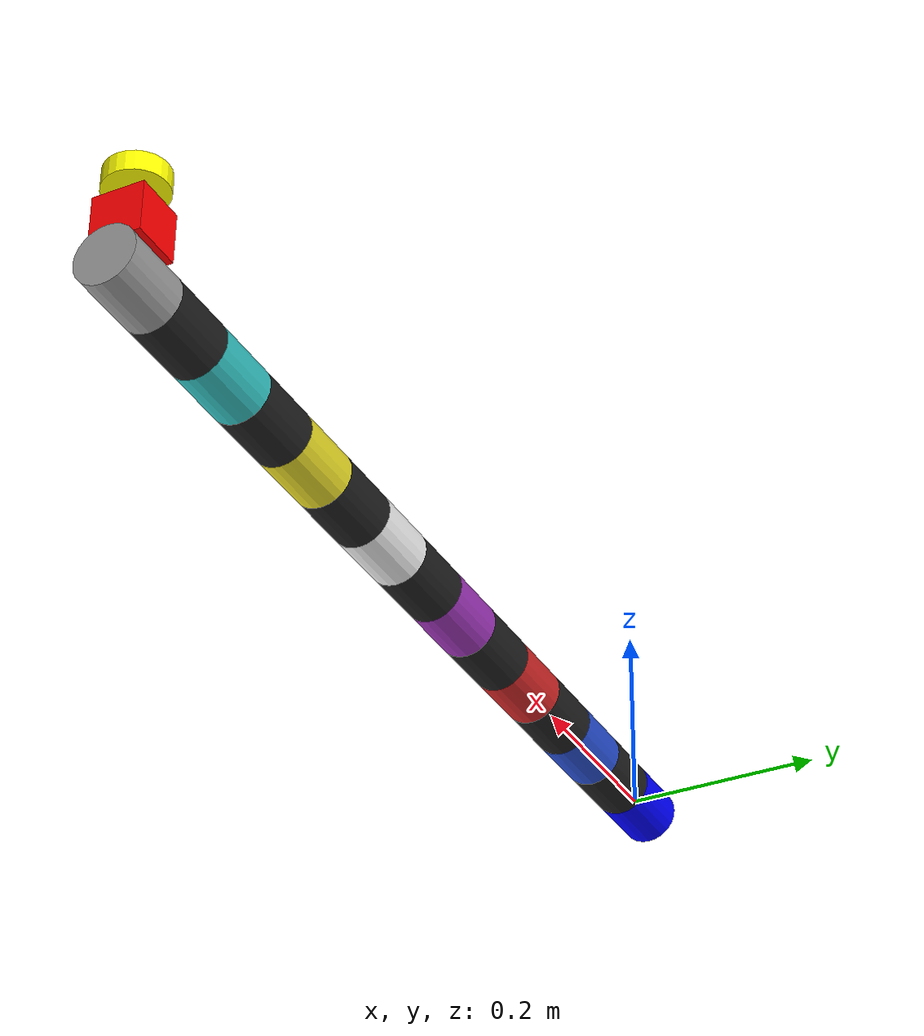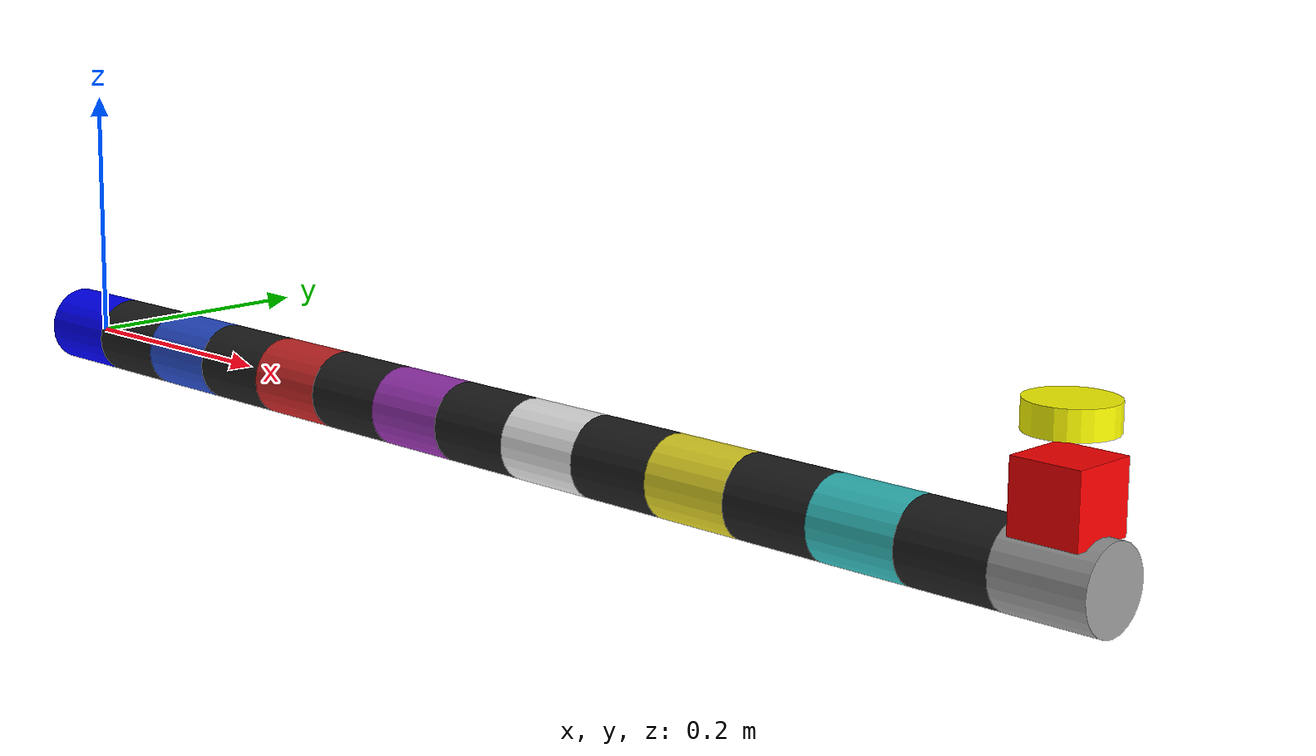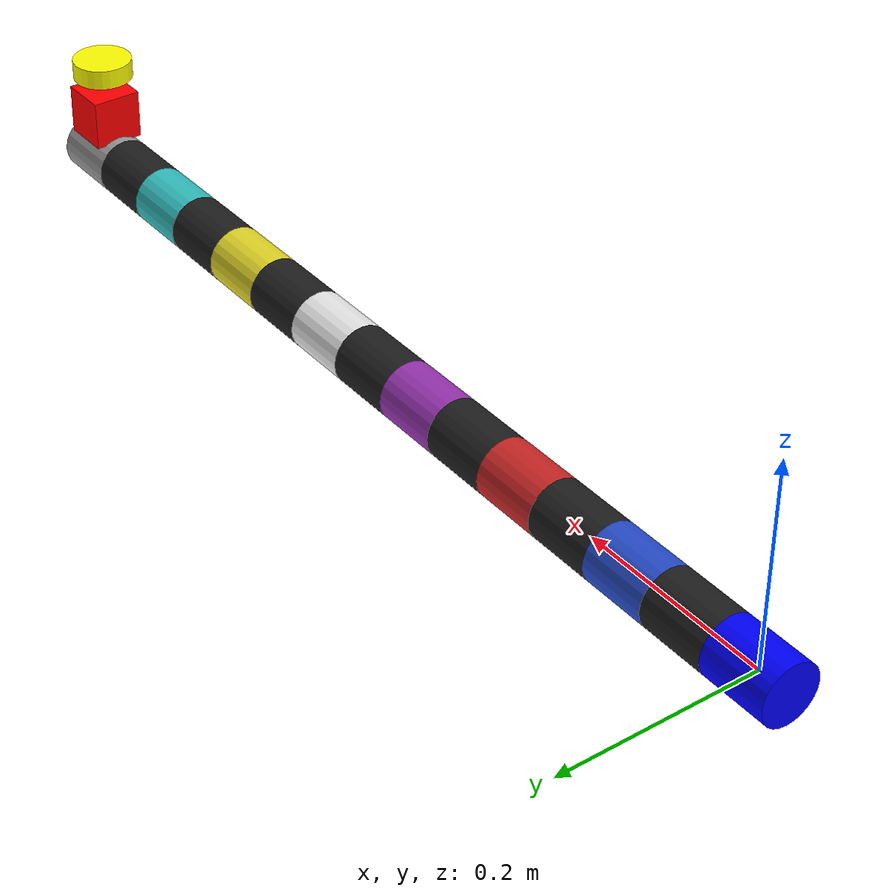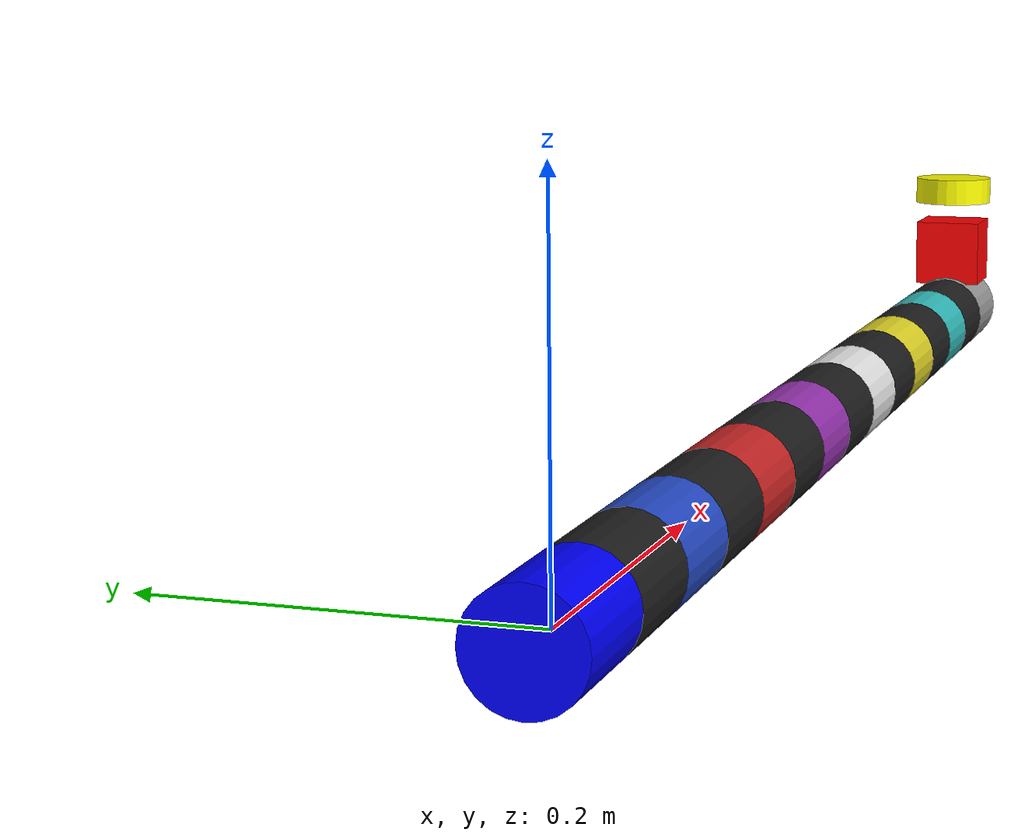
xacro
<?xml version="1.0"?>
<robot xmlns:xacro="http://www.ros.org/wiki/xacro" name="snake">

  <gazebo>
    <plugin name="gazebo_ros_control" filename="libgazebo_ros_control.so">
      <robotNamespace>/snake_bot</robotNamespace>
    </plugin>
  </gazebo>

  <!-- MACROS -->
  <xacro:property name="segment_radius" value="0.03"/>
  <xacro:property name="segment_length" value="0.07"/>
  <xacro:property name="segment_mass" value="0.5"/>

  <xacro:macro name="body_link" params="base_name parent_name colour">

    <link name="${base_name}_aux">
      <inertial>
        <origin xyz="0 0 0" rpy="0 0 0"/>
        <mass value="${segment_mass}"/>
        <inertia ixx="0.00025" ixy="0.0" ixz="0.0" iyy="0.00025" iyz="0.0" izz="0.000125"/>
      </inertial>
      <collision>
        <geometry>
          <cylinder radius="${segment_radius}" length="${segment_length}"/>
        </geometry>
      </collision>
      <visual>
        <geometry>
          <cylinder radius="${segment_radius}" length="${segment_length}"/>
        </geometry>
        <origin xyz="0 0 0" rpy="0 1.57 0"/>
      </visual>
    </link>

    <gazebo reference="${base_name}_aux">
      <kp>1000000000.0</kp>
      <kd>1000000000.0</kd>
      <mu1>10.0</mu1>
      <mu2>10.0</mu2>
      <material>Gazebo/Black</material>
      <self_collide>1</self_collide>
    </gazebo>

    <link name="${base_name}">
      <inertial>
        <origin xyz="0 0 0" rpy="0 0 0"/>
        <mass value="${segment_mass}"/>
        <inertia ixx="0.00025" ixy="0.0" ixz="0.0" iyy="0.00025" iyz="0.0" izz="0.000125"/>
      </inertial>
      <collision>
        <geometry>
          <cylinder radius="${segment_radius}" length="${segment_length}"/>
        </geometry>
      </collision>
      <visual>
        <geometry>
          <cylinder radius="${segment_radius}" length="${segment_length}"/>
        </geometry>
        <origin xyz="0 0 0" rpy="0 1.57 0"/>
      </visual>
    </link>

  <gazebo reference="${base_name}">
    <kp>50.0</kp>
    <kd>5.0</kd>
    <mu1>1.0</mu1>
    <mu2>1.0</mu2>
    <material>Gazebo/${colour}</material>
    <self_collide>1</self_collide>
</gazebo>

    <joint name="${base_name}_aux_joint" type="revolute">
      <parent link="${parent_name}"/>
      <child link="${base_name}_aux"/>
      <origin xyz="${segment_length} 0 0" rpy="0 0 0"/>
      <limit lower="-2.0" upper="2.0" effort="100.0" velocity="1.0"/>
      <axis xyz="0 0 1"/>
    </joint>

    <joint name="${base_name}_joint" type="revolute">
      <parent link="${base_name}_aux"/>
      <child link="${base_name}"/>
      <origin xyz="${segment_length} 0 0" rpy="0 0 0"/>
      <limit lower="-2.0" upper="2.0" effort="100.0" velocity="1.0"/>
      <axis xyz="0 1 0"/>
    </joint>

    <transmission name="tran${base_name}_aux">
      <type>transmission_interface/SimpleTransmission</type>
      <joint name="${base_name}_aux_joint">
        <hardwareInterface>EffortJointInterface</hardwareInterface>
      </joint>
      <actuator name="motor${base_name}_aux">
        <hardwareInterface>EffortJointInterface</hardwareInterface>
        <mechanicalReduction>1</mechanicalReduction>
      </actuator>
    </transmission>

    <transmission name="tran${base_name}">
      <type>transmission_interface/SimpleTransmission</type>
      <joint name="${base_name}_joint">
        <hardwareInterface>EffortJointInterface</hardwareInterface>
      </joint>
      <actuator name="motor${base_name}">
        <hardwareInterface>EffortJointInterface</hardwareInterface>
        <mechanicalReduction>1</mechanicalReduction>
      </actuator>
    </transmission>

  </xacro:macro>

  <!-- BASE LINK -->
  <link name="base_link">
    <inertial>
       <collision>
        <origin xyz="0 0 0.05" rpy="0 0 0"/> <!-- was 0 -->
    </collision>
      <mass value="1.0"/>
      <inertia ixx="0.00025" ixy="0.0" ixz="0.0" iyy="0.00025" iyz="0.0" izz="0.000125"/>
    </inertial>
    <collision>
      <geometry>
        <cylinder radius="${segment_radius}" length="${segment_length}"/>
      </geometry>
    </collision>
    <visual>
      <geometry>
        <cylinder radius="${segment_radius}" length="${segment_length}"/>
      </geometry>
      <origin xyz="0 0 0" rpy="0 1.57 0"/>
      <material name="blue">
        <color rgba="0.0 0.0 1.0 1.0"/>
      </material>
    </visual>
  </link>

  <gazebo reference="base_link">
    <kp>1e14</kp>
    <kd>1e14</kd>
    <mu1>10.0</mu1>
    <mu2>10.0</mu2>
    <material>Gazebo/Green</material>
    <self_collide>1</self_collide>
  </gazebo>

  <!-- BODY SEGMENTS -->
  <xacro:body_link base_name="snake_body_1" parent_name="base_link" colour="Blue"/>
  <xacro:body_link base_name="snake_body_2" parent_name="snake_body_1" colour="Red"/>
  <xacro:body_link base_name="snake_body_3" parent_name="snake_body_2" colour="Purple"/>
  <xacro:body_link base_name="snake_body_4" parent_name="snake_body_3" colour="White"/>
  <xacro:body_link base_name="snake_body_5" parent_name="snake_body_4" colour="Yellow"/>
  <xacro:body_link base_name="snake_body_6" parent_name="snake_body_5" colour="Turquoise"/>
  <xacro:body_link base_name="snake_body_7" parent_name="snake_body_6" colour="Grey"/>

  <!-- IMU LINK & JOINT -->
  <link name="imu_link">
    <inertial>
      <mass value="0.01"/>
      <inertia ixx="0.0001" ixy="0.0" ixz="0.0" iyy="0.0001" iyz="0.0" izz="0.0001"/>
      <origin xyz="0 0 0" rpy="0 0 0"/>
    </inertial>
    <visual>
      <geometry><sphere radius="0.01"/></geometry>
      <material><color rgba="0 0 1 1"/></material>
    </visual>
    <collision>
      <geometry><sphere radius="0.01"/></geometry>
    </collision>
  </link>

  <joint name="imu_fixed_joint" type="fixed">
    <parent link="snake_body_7"/>
    <child link="imu_link"/>
    <origin xyz="0 0 0.02" rpy="0 0 0"/>
  </joint>

  <gazebo reference="imu_link">
    <sensor type="imu" name="imu_sensor">
      <always_on>1</always_on>
      <update_rate>200.0</update_rate>
      <imu>
        <gaussian_noise>0.0001</gaussian_noise>
        <accel_noise>0.01</accel_noise>
        <gyro_noise>0.001</gyro_noise>
      </imu>
      <plugin name="gazebo_ros_imu" filename="libgazebo_ros_imu.so">
        <ros>
          <topic>/imu/data_raw</topic>
          <frameName>imu_link</frameName>
        </ros>
        <bodyName>imu_link</bodyName>
        <alwaysOn>true</alwaysOn>
        <updateRate>200.0</updateRate>
      </plugin>
    </sensor>
  </gazebo>

  <!-- CAMERA & LIDAR (unchanged) -->
  <joint name="camera_joint" type="fixed">
    <parent link="snake_body_7"/>
    <child link="camera_link"/>
    <origin xyz="0 0 0.05" rpy="0 0 0"/>
  </joint>

  <link name="camera_link">
    <visual>
      <geometry><box size="0.05 0.05 0.05"/></geometry>
      <material><color rgba="1.0 0.0 0.0 1.0"/></material>
    </visual>
    <collision>
      <origin xyz="0 0 0" rpy="0 0 0"/>
      <geometry><box size="0.05 0.05 0.05"/></geometry>
    </collision>
  </link>

  <gazebo reference="camera_link">
    <sensor name="snake_cam" type="camera">
      <always_on>true</always_on>
      <update_rate>30</update_rate>
      <visualize>true</visualize>
      <camera>
        <horizontal_fov>1.3962634</horizontal_fov>
        <image>
          <width>640</width>
          <height>480</height>
          <format>R8G8B8</format>
        </image>
        <clip>
          <near>0.1</near>
          <far>100</far>
        </clip>
      </camera>
      <plugin name="camera_controller" filename="libgazebo_ros_camera.so">
        <camera_name>snake_cam</camera_name>
        <image_topic_name>image_raw</image_topic_name>
        <camera_info_topic_name>camera_info</camera_info_topic_name>
        <frame_name>camera_link</frame_name>
        <robot_namespace>/snake_bot</robot_namespace>
      </plugin>
    </sensor>
  </gazebo>

  <!-- LIDAR LINK & JOINT -->
  <joint name="lidar_joint" type="fixed">
    <parent link="snake_body_7"/>
    <child link="lidar_link"/>
    <origin xyz="0 0 0.1" rpy="0 0 0"/>
  </joint>

  <link name="lidar_link">
    <visual>
      <geometry><cylinder radius="0.03" length="0.02"/></geometry>
      <material><color rgba="1.0 1.0 0.0 1.0"/></material>
    </visual>
    <collision>
      <geometry><cylinder radius="0.03" length="0.02"/></geometry>
    </collision>
  </link>

  <gazebo reference="lidar_link">
    <sensor name="snake_lidar" type="ray">
      <pose>0 0 0 0 0 0</pose>
      <visualize>true</visualize>
      <update_rate>20</update_rate>
      <ray>
        <scan>
          <horizontal>
            <samples>720</samples>
            <resolution>1</resolution>
            <min_angle>-1.5708</min_angle>
            <max_angle>1.5708</max_angle>
          </horizontal>
        </scan>
        <range>
          <min>0.12</min>
          <max>2.0</max>
          <resolution>0.01</resolution>
        </range>
        <noise>
          <type>gaussian</type>
          <mean>0.0</mean>
          <stddev>0.01</stddev>
        </noise>
      </ray>
      <plugin name="gazebo_ros_laser_controller" filename="libgazebo_ros_laser.so">
        <topicName>scan</topicName>
        <frameName>lidar_link</frameName>
        <robotNamespace>/snake_bot</robotNamespace>
      </plugin>
    </sensor>
  </gazebo>

</robot>
